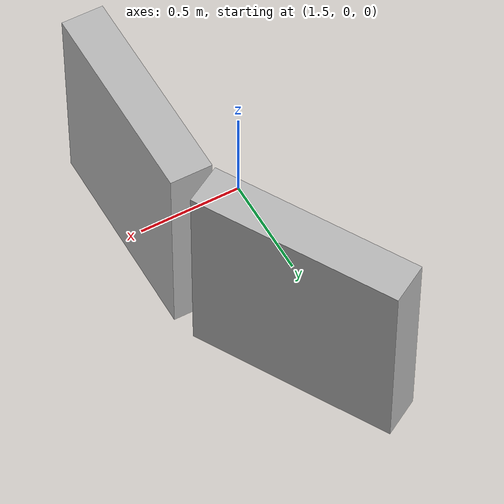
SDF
<?xml version="1.0" ?>
<sdf version="1.7">
  <model name="circular_wall_hollow">
    <static>true</static>

    <!-- 用12块墙围成一圈，半径2米 -->
    <!-- 每块墙的角度：360/12 = 30度 = 0.5236弧度 -->

    <!-- 墙块 1 -->
    <link name="wall_1">
      <pose>2.0 0 0.5 0 0 0</pose>
      <visual name="visual">
        <geometry>
          <box>
            <size>0.2 1.0 1.0</size>
          </box>
        </geometry>
      </visual>
      <collision name="collision">
        <geometry><box><size>0.2 1.0 1.0</size></box></geometry>
      </collision>
    </link>

    <!-- 墙块 2 (旋转30度) -->
    <link name="wall_2">
      <pose>1.732 1.0 0.5 0 0 0.5236</pose>  <!-- x=r*cos30, y=r*sin30 -->
      <visual name="visual">
        <geometry><box><size>0.2 1.0 1.0</size></box></geometry>
      </visual>
      <collision name="collision">
        <geometry><box><size>0.2 1.0 1.0</size></box></geometry>
      </collision>
    </link>

    <!-- 继续添加 wall_3 到 wall_12... -->

  </model>
</sdf>
